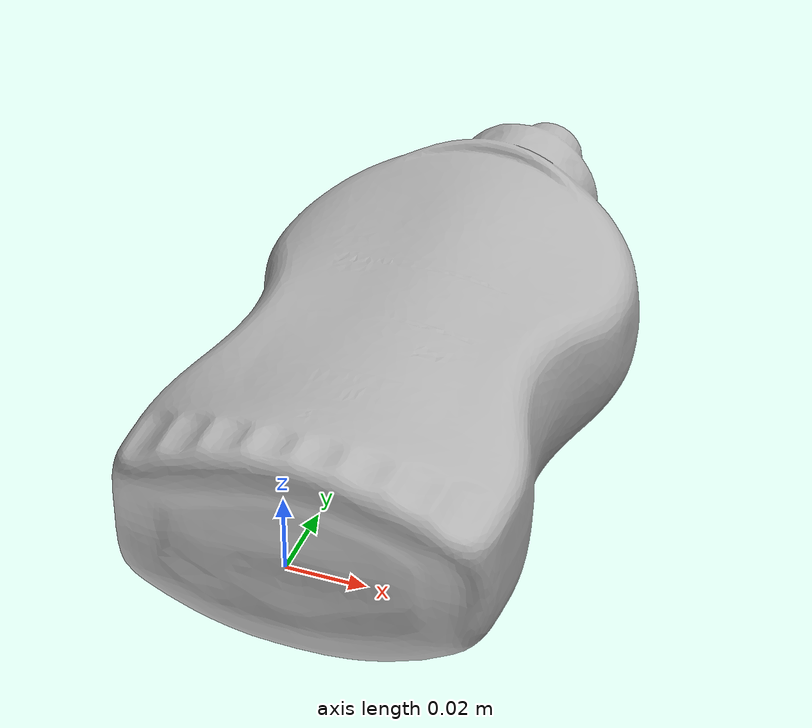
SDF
<?xml version='1.0'?>
<sdf version="1.4">
  <model name="mustard">
    <pose>0 0 0 0 0 0</pose>
    <static>0</static>
    <link name="body">
      <inertial>
	<pose>0 0.08 0 1.5707963 1.5707963 0</pose>
         <mass>0.603</mass>
         <inertia>
	    <ixx>0.002268</ixx>
            <ixy>0.000000</ixy>
            <ixz>0.000000</ixz>
            <iyy>0.001983</iyy>
            <iyz>0.000000</iyz>
            <izz>0.000623</izz>
         </inertia>
	</inertial>
      <collision name="collision">
	<pose>0 0 0 0 0 0</pose>
        <geometry>
          <mesh>
     	    <uri>model://mustard/meshes/mustard.obj</uri>
	    <scale>0.1 0.1 0.1</scale>
  	  </mesh>
        </geometry>

        <surface>
          <friction>
            <ode>
              <mu>80.0</mu>
              <mu2>100.0</mu2>
            </ode>
          </friction>
          <contact>
            <ode>
              <kp>1000000.0</kp>
              <kd>100.0</kd>
              <max_vel>0.0</max_vel>
              <min_depth>0.002</min_depth>
            </ode>
          </contact>
        </surface>
      </collision>
      <visual name="visual">
        <geometry>
          <mesh>
            <uri>model://mustard/meshes/mustard.obj</uri>
	    <scale>0.1 0.1 0.1</scale>
          </mesh>
        </geometry>
      </visual>
      <velocity_decay>
        <linear>0.000000</linear>
        <angular>0.000000</angular>
      </velocity_decay>
      <self_collide>0</self_collide>
      <kinematic>0</kinematic>
      <gravity>1</gravity>
    </link>
  </model>
</sdf>
